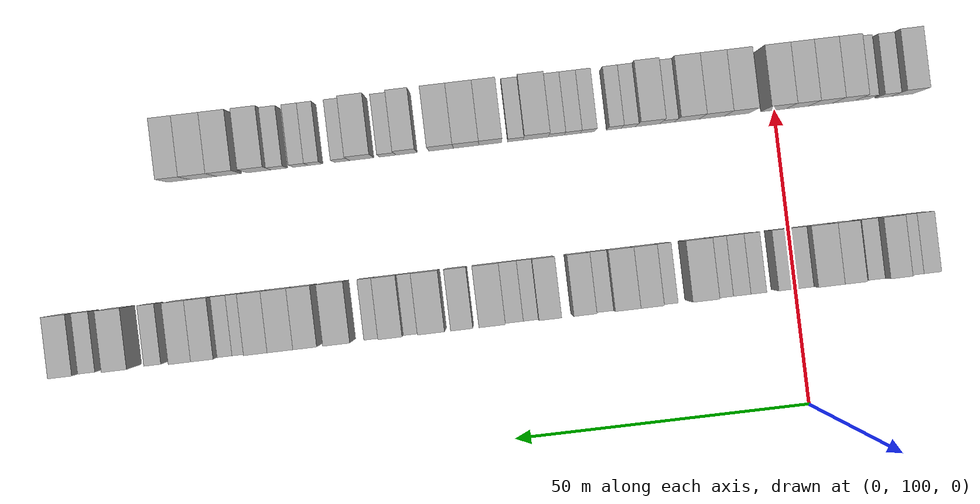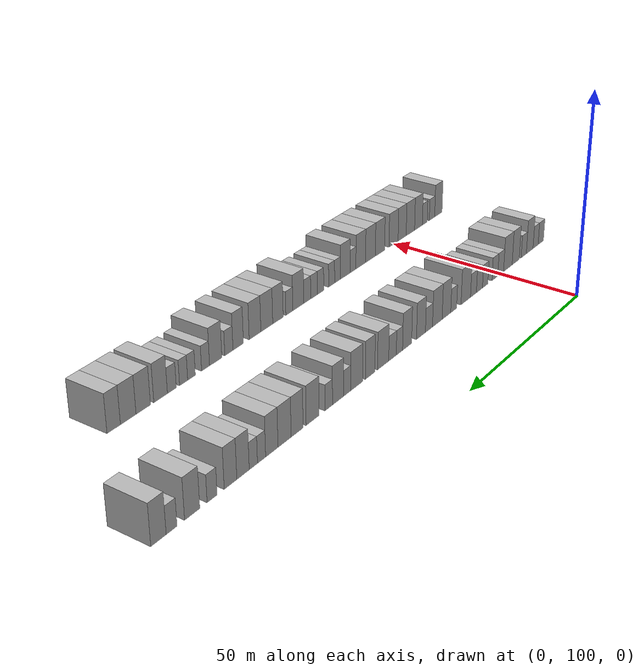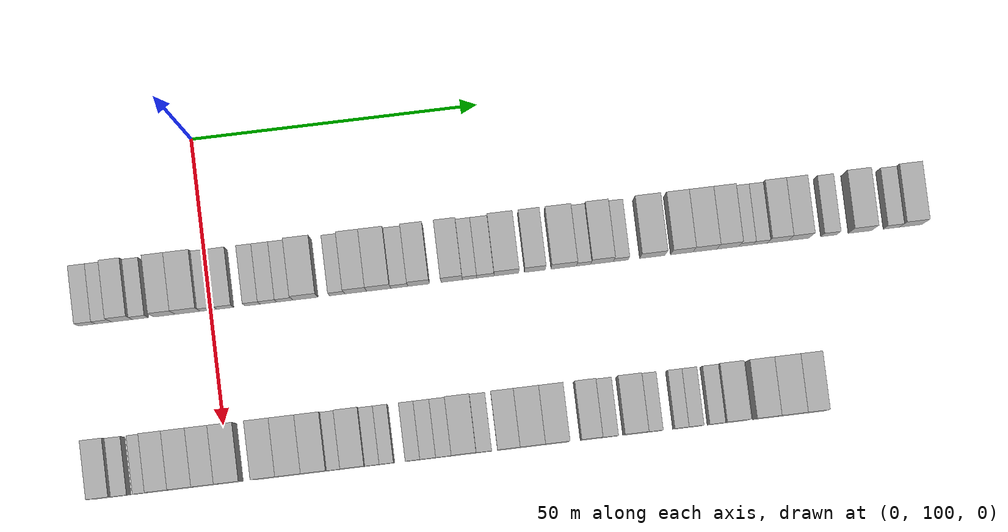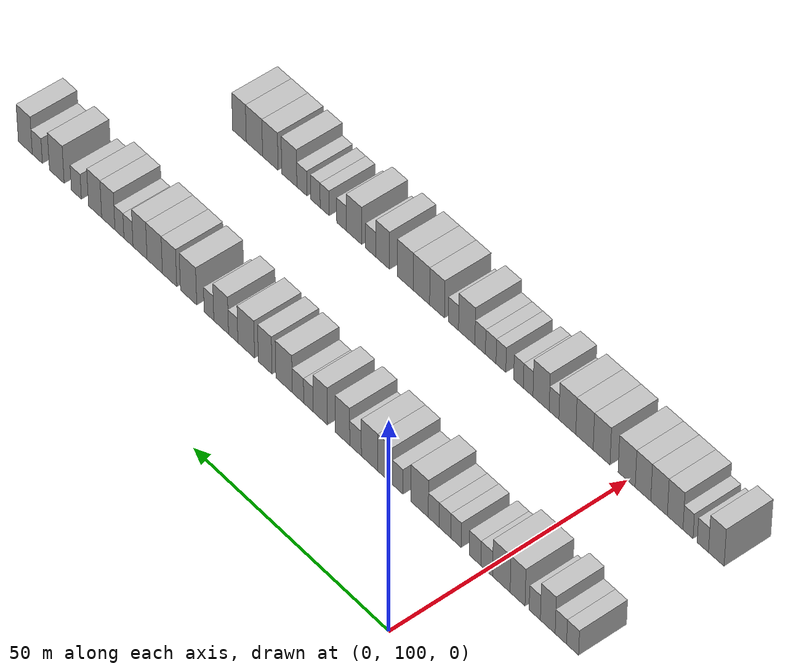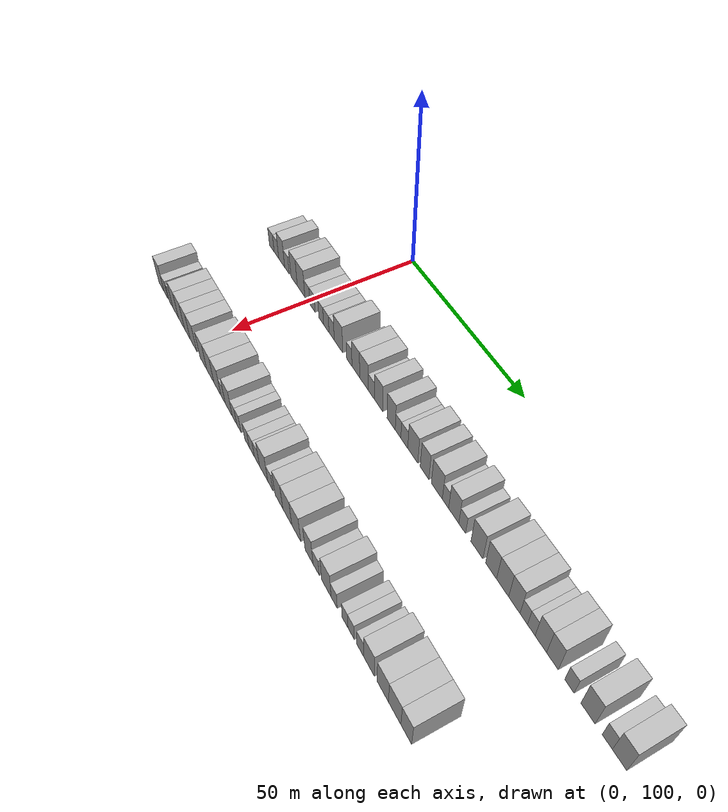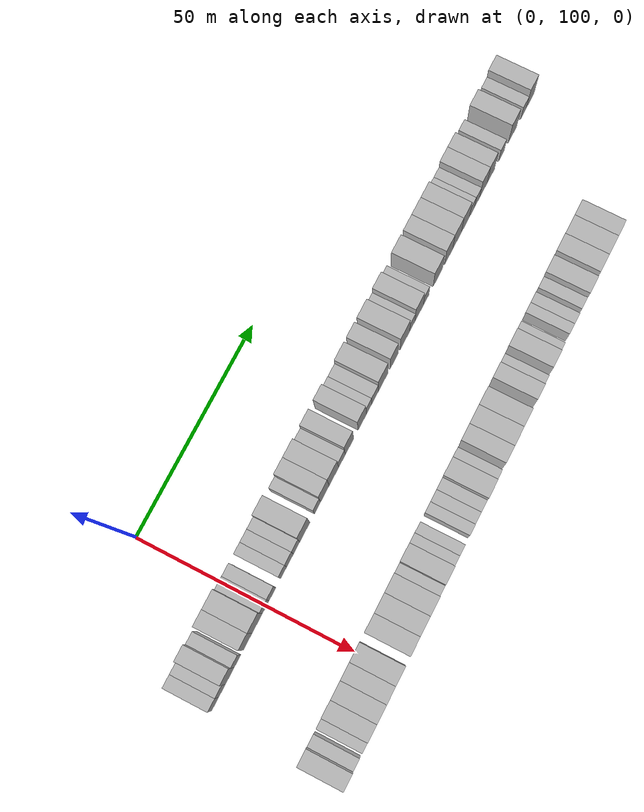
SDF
<sdf version="1.6">
 <world name="default">
  <model name="building_132">
   <static>1</static>
   <pose>25.0000 78.6470 0 0.000000 0.000000 0.000000</pose>
   <link name="link">
    <pose>0 0 3.00 0 0 0</pose>
    <collision name="collision"><geometry><box><size>10.0000 2.9197 6.0000</size></box></geometry></collision>
    <visual name="visual">
     <cast_shadows>0</cast_shadows>
     <geometry><box><size>10.0000 2.9197 6.0000</size></box></geometry>
     <material>
      <script>
       <uri>model://HANNAS_wall/materials/scripts</uri>
       <uri>model://HANNAS_wall/materials/textures</uri>
       <name>vrc/HANNAS_wall</name>
      </script>
     </material>
    </visual>
   </link>
  </model>
  <model name="building_133">
   <static>1</static>
   <pose>25.0000 81.5046 0 0.000000 0.000000 0.000000</pose>
   <link name="link">
    <pose>0 0 3.00 0 0 0</pose>
    <collision name="collision"><geometry><box><size>10.0000 2.7956 6.0000</size></box></geometry></collision>
    <visual name="visual">
     <cast_shadows>0</cast_shadows>
     <geometry><box><size>10.0000 2.7956 6.0000</size></box></geometry>
     <material>
      <script>
       <uri>model://HANNAS_wall/materials/scripts</uri>
       <uri>model://HANNAS_wall/materials/textures</uri>
       <name>vrc/HANNAS_wall</name>
      </script>
     </material>
    </visual>
   </link>
  </model>
  <model name="building_134">
   <static>1</static>
   <pose>25.0000 84.7092 0 0.000000 0.000000 0.000000</pose>
   <link name="link">
    <pose>0 0 4.50 0 0 0</pose>
    <collision name="collision"><geometry><box><size>10.0000 3.6135 9.0000</size></box></geometry></collision>
    <visual name="visual">
     <cast_shadows>0</cast_shadows>
     <geometry><box><size>10.0000 3.6135 9.0000</size></box></geometry>
     <material>
      <script>
       <uri>model://HANNAS_wall/materials/scripts</uri>
       <uri>model://HANNAS_wall/materials/textures</uri>
       <name>vrc/HANNAS_wall</name>
      </script>
     </material>
    </visual>
   </link>
  </model>
  <model name="building_135">
   <static>1</static>
   <pose>25.0000 87.8958 0 0.000000 0.000000 0.000000</pose>
   <link name="link">
    <pose>0 0 3.00 0 0 0</pose>
    <collision name="collision"><geometry><box><size>10.0000 2.7599 6.0000</size></box></geometry></collision>
    <visual name="visual">
     <cast_shadows>0</cast_shadows>
     <geometry><box><size>10.0000 2.7599 6.0000</size></box></geometry>
     <material>
      <script>
       <uri>model://HANNAS_wall/materials/scripts</uri>
       <uri>model://HANNAS_wall/materials/textures</uri>
       <name>vrc/HANNAS_wall</name>
      </script>
     </material>
    </visual>
   </link>
  </model>
  <model name="building_136">
   <static>1</static>
   <pose>25.0000 92.1163 0 0.000000 0.000000 0.000000</pose>
   <link name="link">
    <pose>0 0 4.50 0 0 0</pose>
    <collision name="collision"><geometry><box><size>10.0000 3.6810 9.0000</size></box></geometry></collision>
    <visual name="visual">
     <cast_shadows>0</cast_shadows>
     <geometry><box><size>10.0000 3.6810 9.0000</size></box></geometry>
     <material>
      <script>
       <uri>model://HANNAS_wall/materials/scripts</uri>
       <uri>model://HANNAS_wall/materials/textures</uri>
       <name>vrc/HANNAS_wall</name>
      </script>
     </material>
    </visual>
   </link>
  </model>
  <model name="building_137">
   <static>1</static>
   <pose>25.0000 96.1368 0 0.000000 0.000000 0.000000</pose>
   <link name="link">
    <pose>0 0 4.50 0 0 0</pose>
    <collision name="collision"><geometry><box><size>10.0000 4.3601 9.0000</size></box></geometry></collision>
    <visual name="visual">
     <cast_shadows>0</cast_shadows>
     <geometry><box><size>10.0000 4.3601 9.0000</size></box></geometry>
     <material>
      <script>
       <uri>model://HANNAS_wall/materials/scripts</uri>
       <uri>model://HANNAS_wall/materials/textures</uri>
       <name>vrc/HANNAS_wall</name>
      </script>
     </material>
    </visual>
   </link>
  </model>
  <model name="building_138">
   <static>1</static>
   <pose>25.0000 99.7640 0 0.000000 0.000000 0.000000</pose>
   <link name="link">
    <pose>0 0 3.00 0 0 0</pose>
    <collision name="collision"><geometry><box><size>10.0000 2.8944 6.0000</size></box></geometry></collision>
    <visual name="visual">
     <cast_shadows>0</cast_shadows>
     <geometry><box><size>10.0000 2.8944 6.0000</size></box></geometry>
     <material>
      <script>
       <uri>model://HANNAS_wall/materials/scripts</uri>
       <uri>model://HANNAS_wall/materials/textures</uri>
       <name>vrc/HANNAS_wall</name>
      </script>
     </material>
    </visual>
   </link>
  </model>
  <model name="building_139">
   <static>1</static>
   <pose>25.0000 102.6637 0 0.000000 0.000000 0.000000</pose>
   <link name="link">
    <pose>0 0 3.00 0 0 0</pose>
    <collision name="collision"><geometry><box><size>10.0000 2.9050 6.0000</size></box></geometry></collision>
    <visual name="visual">
     <cast_shadows>0</cast_shadows>
     <geometry><box><size>10.0000 2.9050 6.0000</size></box></geometry>
     <material>
      <script>
       <uri>model://HANNAS_wall/materials/scripts</uri>
       <uri>model://HANNAS_wall/materials/textures</uri>
       <name>vrc/HANNAS_wall</name>
      </script>
     </material>
    </visual>
   </link>
  </model>
  <model name="building_140">
   <static>1</static>
   <pose>25.0000 107.4209 0 0.000000 0.000000 0.000000</pose>
   <link name="link">
    <pose>0 0 3.00 0 0 0</pose>
    <collision name="collision"><geometry><box><size>10.0000 2.6094 6.0000</size></box></geometry></collision>
    <visual name="visual">
     <cast_shadows>0</cast_shadows>
     <geometry><box><size>10.0000 2.6094 6.0000</size></box></geometry>
     <material>
      <script>
       <uri>model://HANNAS_wall/materials/scripts</uri>
       <uri>model://HANNAS_wall/materials/textures</uri>
       <name>vrc/HANNAS_wall</name>
      </script>
     </material>
    </visual>
   </link>
  </model>
  <model name="building_141">
   <static>1</static>
   <pose>25.0000 110.1765 0 0.000000 0.000000 0.000000</pose>
   <link name="link">
    <pose>0 0 3.00 0 0 0</pose>
    <collision name="collision"><geometry><box><size>10.0000 2.9018 6.0000</size></box></geometry></collision>
    <visual name="visual">
     <cast_shadows>0</cast_shadows>
     <geometry><box><size>10.0000 2.9018 6.0000</size></box></geometry>
     <material>
      <script>
       <uri>model://HANNAS_wall/materials/scripts</uri>
       <uri>model://HANNAS_wall/materials/textures</uri>
       <name>vrc/HANNAS_wall</name>
      </script>
     </material>
    </visual>
   </link>
  </model>
  <model name="building_142">
   <static>1</static>
   <pose>25.0000 113.0110 0 0.000000 0.000000 0.000000</pose>
   <link name="link">
    <pose>0 0 3.00 0 0 0</pose>
    <collision name="collision"><geometry><box><size>10.0000 2.7672 6.0000</size></box></geometry></collision>
    <visual name="visual">
     <cast_shadows>0</cast_shadows>
     <geometry><box><size>10.0000 2.7672 6.0000</size></box></geometry>
     <material>
      <script>
       <uri>model://HANNAS_wall/materials/scripts</uri>
       <uri>model://HANNAS_wall/materials/textures</uri>
       <name>vrc/HANNAS_wall</name>
      </script>
     </material>
    </visual>
   </link>
  </model>
  <model name="building_143">
   <static>1</static>
   <pose>25.0000 116.5917 0 0.000000 0.000000 0.000000</pose>
   <link name="link">
    <pose>0 0 4.50 0 0 0</pose>
    <collision name="collision"><geometry><box><size>10.0000 4.3943 9.0000</size></box></geometry></collision>
    <visual name="visual">
     <cast_shadows>0</cast_shadows>
     <geometry><box><size>10.0000 4.3943 9.0000</size></box></geometry>
     <material>
      <script>
       <uri>model://HANNAS_wall/materials/scripts</uri>
       <uri>model://HANNAS_wall/materials/textures</uri>
       <name>vrc/HANNAS_wall</name>
      </script>
     </material>
    </visual>
   </link>
  </model>
  <model name="building_144">
   <static>1</static>
   <pose>25.0000 122.1174 0 0.000000 0.000000 0.000000</pose>
   <link name="link">
    <pose>0 0 3.00 0 0 0</pose>
    <collision name="collision"><geometry><box><size>10.0000 2.6570 6.0000</size></box></geometry></collision>
    <visual name="visual">
     <cast_shadows>0</cast_shadows>
     <geometry><box><size>10.0000 2.6570 6.0000</size></box></geometry>
     <material>
      <script>
       <uri>model://HANNAS_wall/materials/scripts</uri>
       <uri>model://HANNAS_wall/materials/textures</uri>
       <name>vrc/HANNAS_wall</name>
      </script>
     </material>
    </visual>
   </link>
  </model>
  <model name="building_145">
   <static>1</static>
   <pose>25.0000 125.3533 0 0.000000 0.000000 0.000000</pose>
   <link name="link">
    <pose>0 0 4.50 0 0 0</pose>
    <collision name="collision"><geometry><box><size>10.0000 3.8149 9.0000</size></box></geometry></collision>
    <visual name="visual">
     <cast_shadows>0</cast_shadows>
     <geometry><box><size>10.0000 3.8149 9.0000</size></box></geometry>
     <material>
      <script>
       <uri>model://HANNAS_wall/materials/scripts</uri>
       <uri>model://HANNAS_wall/materials/textures</uri>
       <name>vrc/HANNAS_wall</name>
      </script>
     </material>
    </visual>
   </link>
  </model>
  <model name="building_146">
   <static>1</static>
   <pose>25.0000 129.3549 0 0.000000 0.000000 0.000000</pose>
   <link name="link">
    <pose>0 0 4.50 0 0 0</pose>
    <collision name="collision"><geometry><box><size>10.0000 4.1883 9.0000</size></box></geometry></collision>
    <visual name="visual">
     <cast_shadows>0</cast_shadows>
     <geometry><box><size>10.0000 4.1883 9.0000</size></box></geometry>
     <material>
      <script>
       <uri>model://HANNAS_wall/materials/scripts</uri>
       <uri>model://HANNAS_wall/materials/textures</uri>
       <name>vrc/HANNAS_wall</name>
      </script>
     </material>
    </visual>
   </link>
  </model>
  <model name="building_147">
   <static>1</static>
   <pose>25.0000 132.9476 0 0.000000 0.000000 0.000000</pose>
   <link name="link">
    <pose>0 0 3.00 0 0 0</pose>
    <collision name="collision"><geometry><box><size>10.0000 2.9971 6.0000</size></box></geometry></collision>
    <visual name="visual">
     <cast_shadows>0</cast_shadows>
     <geometry><box><size>10.0000 2.9971 6.0000</size></box></geometry>
     <material>
      <script>
       <uri>model://HANNAS_wall/materials/scripts</uri>
       <uri>model://HANNAS_wall/materials/textures</uri>
       <name>vrc/HANNAS_wall</name>
      </script>
     </material>
    </visual>
   </link>
  </model>
  <model name="building_148">
   <static>1</static>
   <pose>25.0000 136.3239 0 0.000000 0.000000 0.000000</pose>
   <link name="link">
    <pose>0 0 4.50 0 0 0</pose>
    <collision name="collision"><geometry><box><size>10.0000 3.7555 9.0000</size></box></geometry></collision>
    <visual name="visual">
     <cast_shadows>0</cast_shadows>
     <geometry><box><size>10.0000 3.7555 9.0000</size></box></geometry>
     <material>
      <script>
       <uri>model://HANNAS_wall/materials/scripts</uri>
       <uri>model://HANNAS_wall/materials/textures</uri>
       <name>vrc/HANNAS_wall</name>
      </script>
     </material>
    </visual>
   </link>
  </model>
  <model name="building_149">
   <static>1</static>
   <pose>25.0000 142.0528 0 0.000000 0.000000 0.000000</pose>
   <link name="link">
    <pose>0 0 4.50 0 0 0</pose>
    <collision name="collision"><geometry><box><size>10.0000 3.7023 9.0000</size></box></geometry></collision>
    <visual name="visual">
     <cast_shadows>0</cast_shadows>
     <geometry><box><size>10.0000 3.7023 9.0000</size></box></geometry>
     <material>
      <script>
       <uri>model://HANNAS_wall/materials/scripts</uri>
       <uri>model://HANNAS_wall/materials/textures</uri>
       <name>vrc/HANNAS_wall</name>
      </script>
     </material>
    </visual>
   </link>
  </model>
  <model name="building_150">
   <static>1</static>
   <pose>25.0000 145.1534 0 0.000000 0.000000 0.000000</pose>
   <link name="link">
    <pose>0 0 3.00 0 0 0</pose>
    <collision name="collision"><geometry><box><size>10.0000 2.4989 6.0000</size></box></geometry></collision>
    <visual name="visual">
     <cast_shadows>0</cast_shadows>
     <geometry><box><size>10.0000 2.4989 6.0000</size></box></geometry>
     <material>
      <script>
       <uri>model://HANNAS_wall/materials/scripts</uri>
       <uri>model://HANNAS_wall/materials/textures</uri>
       <name>vrc/HANNAS_wall</name>
      </script>
     </material>
    </visual>
   </link>
  </model>
  <model name="building_151">
   <static>1</static>
   <pose>25.0000 147.8989 0 0.000000 0.000000 0.000000</pose>
   <link name="link">
    <pose>0 0 3.00 0 0 0</pose>
    <collision name="collision"><geometry><box><size>10.0000 2.9921 6.0000</size></box></geometry></collision>
    <visual name="visual">
     <cast_shadows>0</cast_shadows>
     <geometry><box><size>10.0000 2.9921 6.0000</size></box></geometry>
     <material>
      <script>
       <uri>model://HANNAS_wall/materials/scripts</uri>
       <uri>model://HANNAS_wall/materials/textures</uri>
       <name>vrc/HANNAS_wall</name>
      </script>
     </material>
    </visual>
   </link>
  </model>
  <model name="building_152">
   <static>1</static>
   <pose>25.0000 151.5547 0 0.000000 0.000000 0.000000</pose>
   <link name="link">
    <pose>0 0 4.50 0 0 0</pose>
    <collision name="collision"><geometry><box><size>10.0000 4.3194 9.0000</size></box></geometry></collision>
    <visual name="visual">
     <cast_shadows>0</cast_shadows>
     <geometry><box><size>10.0000 4.3194 9.0000</size></box></geometry>
     <material>
      <script>
       <uri>model://HANNAS_wall/materials/scripts</uri>
       <uri>model://HANNAS_wall/materials/textures</uri>
       <name>vrc/HANNAS_wall</name>
      </script>
     </material>
    </visual>
   </link>
  </model>
  <model name="building_153">
   <static>1</static>
   <pose>25.0000 156.5243 0 0.000000 0.000000 0.000000</pose>
   <link name="link">
    <pose>0 0 4.50 0 0 0</pose>
    <collision name="collision"><geometry><box><size>10.0000 3.6199 9.0000</size></box></geometry></collision>
    <visual name="visual">
     <cast_shadows>0</cast_shadows>
     <geometry><box><size>10.0000 3.6199 9.0000</size></box></geometry>
     <material>
      <script>
       <uri>model://HANNAS_wall/materials/scripts</uri>
       <uri>model://HANNAS_wall/materials/textures</uri>
       <name>vrc/HANNAS_wall</name>
      </script>
     </material>
    </visual>
   </link>
  </model>
  <model name="building_154">
   <static>1</static>
   <pose>25.0000 161.5489 0 0.000000 0.000000 0.000000</pose>
   <link name="link">
    <pose>0 0 4.50 0 0 0</pose>
    <collision name="collision"><geometry><box><size>10.0000 4.4294 9.0000</size></box></geometry></collision>
    <visual name="visual">
     <cast_shadows>0</cast_shadows>
     <geometry><box><size>10.0000 4.4294 9.0000</size></box></geometry>
     <material>
      <script>
       <uri>model://HANNAS_wall/materials/scripts</uri>
       <uri>model://HANNAS_wall/materials/textures</uri>
       <name>vrc/HANNAS_wall</name>
      </script>
     </material>
    </visual>
   </link>
  </model>
  <model name="building_155">
   <static>1</static>
   <pose>25.0000 165.0091 0 0.000000 0.000000 0.000000</pose>
   <link name="link">
    <pose>0 0 3.00 0 0 0</pose>
    <collision name="collision"><geometry><box><size>10.0000 2.4910 6.0000</size></box></geometry></collision>
    <visual name="visual">
     <cast_shadows>0</cast_shadows>
     <geometry><box><size>10.0000 2.4910 6.0000</size></box></geometry>
     <material>
      <script>
       <uri>model://HANNAS_wall/materials/scripts</uri>
       <uri>model://HANNAS_wall/materials/textures</uri>
       <name>vrc/HANNAS_wall</name>
      </script>
     </material>
    </visual>
   </link>
  </model>
  <model name="building_156">
   <static>1</static>
   <pose>25.0000 168.2266 0 0.000000 0.000000 0.000000</pose>
   <link name="link">
    <pose>0 0 4.50 0 0 0</pose>
    <collision name="collision"><geometry><box><size>10.0000 3.9438 9.0000</size></box></geometry></collision>
    <visual name="visual">
     <cast_shadows>0</cast_shadows>
     <geometry><box><size>10.0000 3.9438 9.0000</size></box></geometry>
     <material>
      <script>
       <uri>model://HANNAS_wall/materials/scripts</uri>
       <uri>model://HANNAS_wall/materials/textures</uri>
       <name>vrc/HANNAS_wall</name>
      </script>
     </material>
    </visual>
   </link>
  </model>
  <model name="building_157">
   <static>1</static>
   <pose>25.0000 171.4936 0 0.000000 0.000000 0.000000</pose>
   <link name="link">
    <pose>0 0 3.00 0 0 0</pose>
    <collision name="collision"><geometry><box><size>10.0000 2.5904 6.0000</size></box></geometry></collision>
    <visual name="visual">
     <cast_shadows>0</cast_shadows>
     <geometry><box><size>10.0000 2.5904 6.0000</size></box></geometry>
     <material>
      <script>
       <uri>model://HANNAS_wall/materials/scripts</uri>
       <uri>model://HANNAS_wall/materials/textures</uri>
       <name>vrc/HANNAS_wall</name>
      </script>
     </material>
    </visual>
   </link>
  </model>
  <model name="building_158">
   <static>1</static>
   <pose>25.0000 176.9845 0 0.000000 0.000000 0.000000</pose>
   <link name="link">
    <pose>0 0 4.50 0 0 0</pose>
    <collision name="collision"><geometry><box><size>10.0000 4.3913 9.0000</size></box></geometry></collision>
    <visual name="visual">
     <cast_shadows>0</cast_shadows>
     <geometry><box><size>10.0000 4.3913 9.0000</size></box></geometry>
     <material>
      <script>
       <uri>model://HANNAS_wall/materials/scripts</uri>
       <uri>model://HANNAS_wall/materials/textures</uri>
       <name>vrc/HANNAS_wall</name>
      </script>
     </material>
    </visual>
   </link>
  </model>
  <model name="building_159">
   <static>1</static>
   <pose>25.0000 182.1224 0 0.000000 0.000000 0.000000</pose>
   <link name="link">
    <pose>0 0 4.50 0 0 0</pose>
    <collision name="collision"><geometry><box><size>10.0000 3.8846 9.0000</size></box></geometry></collision>
    <visual name="visual">
     <cast_shadows>0</cast_shadows>
     <geometry><box><size>10.0000 3.8846 9.0000</size></box></geometry>
     <material>
      <script>
       <uri>model://HANNAS_wall/materials/scripts</uri>
       <uri>model://HANNAS_wall/materials/textures</uri>
       <name>vrc/HANNAS_wall</name>
      </script>
     </material>
    </visual>
   </link>
  </model>
  <model name="building_160">
   <static>1</static>
   <pose>25.0000 186.1620 0 0.000000 0.000000 0.000000</pose>
   <link name="link">
    <pose>0 0 4.50 0 0 0</pose>
    <collision name="collision"><geometry><box><size>10.0000 4.1945 9.0000</size></box></geometry></collision>
    <visual name="visual">
     <cast_shadows>0</cast_shadows>
     <geometry><box><size>10.0000 4.1945 9.0000</size></box></geometry>
     <material>
      <script>
       <uri>model://HANNAS_wall/materials/scripts</uri>
       <uri>model://HANNAS_wall/materials/textures</uri>
       <name>vrc/HANNAS_wall</name>
      </script>
     </material>
    </visual>
   </link>
  </model>
  <model name="building_161">
   <static>1</static>
   <pose>25.0000 190.1838 0 0.000000 0.000000 0.000000</pose>
   <link name="link">
    <pose>0 0 4.50 0 0 0</pose>
    <collision name="collision"><geometry><box><size>10.0000 3.8492 9.0000</size></box></geometry></collision>
    <visual name="visual">
     <cast_shadows>0</cast_shadows>
     <geometry><box><size>10.0000 3.8492 9.0000</size></box></geometry>
     <material>
      <script>
       <uri>model://HANNAS_wall/materials/scripts</uri>
       <uri>model://HANNAS_wall/materials/textures</uri>
       <name>vrc/HANNAS_wall</name>
      </script>
     </material>
    </visual>
   </link>
  </model>
  <model name="building_162">
   <static>1</static>
   <pose>25.0000 193.3548 0 0.000000 0.000000 0.000000</pose>
   <link name="link">
    <pose>0 0 3.00 0 0 0</pose>
    <collision name="collision"><geometry><box><size>10.0000 2.4927 6.0000</size></box></geometry></collision>
    <visual name="visual">
     <cast_shadows>0</cast_shadows>
     <geometry><box><size>10.0000 2.4927 6.0000</size></box></geometry>
     <material>
      <script>
       <uri>model://HANNAS_wall/materials/scripts</uri>
       <uri>model://HANNAS_wall/materials/textures</uri>
       <name>vrc/HANNAS_wall</name>
      </script>
     </material>
    </visual>
   </link>
  </model>
  <model name="building_163">
   <static>1</static>
   <pose>25.0000 195.8367 0 0.000000 0.000000 0.000000</pose>
   <link name="link">
    <pose>0 0 3.00 0 0 0</pose>
    <collision name="collision"><geometry><box><size>10.0000 2.4711 6.0000</size></box></geometry></collision>
    <visual name="visual">
     <cast_shadows>0</cast_shadows>
     <geometry><box><size>10.0000 2.4711 6.0000</size></box></geometry>
     <material>
      <script>
       <uri>model://HANNAS_wall/materials/scripts</uri>
       <uri>model://HANNAS_wall/materials/textures</uri>
       <name>vrc/HANNAS_wall</name>
      </script>
     </material>
    </visual>
   </link>
  </model>
  <model name="building_164">
   <static>1</static>
   <pose>25.0000 198.9050 0 0.000000 0.000000 0.000000</pose>
   <link name="link">
    <pose>0 0 4.50 0 0 0</pose>
    <collision name="collision"><geometry><box><size>10.0000 3.6655 9.0000</size></box></geometry></collision>
    <visual name="visual">
     <cast_shadows>0</cast_shadows>
     <geometry><box><size>10.0000 3.6655 9.0000</size></box></geometry>
     <material>
      <script>
       <uri>model://HANNAS_wall/materials/scripts</uri>
       <uri>model://HANNAS_wall/materials/textures</uri>
       <name>vrc/HANNAS_wall</name>
      </script>
     </material>
    </visual>
   </link>
  </model>
  <model name="building_165">
   <static>1</static>
   <pose>25.0000 202.5617 0 0.000000 0.000000 0.000000</pose>
   <link name="link">
    <pose>0 0 4.50 0 0 0</pose>
    <collision name="collision"><geometry><box><size>10.0000 3.6479 9.0000</size></box></geometry></collision>
    <visual name="visual">
     <cast_shadows>0</cast_shadows>
     <geometry><box><size>10.0000 3.6479 9.0000</size></box></geometry>
     <material>
      <script>
       <uri>model://HANNAS_wall/materials/scripts</uri>
       <uri>model://HANNAS_wall/materials/textures</uri>
       <name>vrc/HANNAS_wall</name>
      </script>
     </material>
    </visual>
   </link>
  </model>
  <model name="building_166">
   <static>1</static>
   <pose>25.0000 207.7889 0 0.000000 0.000000 0.000000</pose>
   <link name="link">
    <pose>0 0 3.00 0 0 0</pose>
    <collision name="collision"><geometry><box><size>10.0000 2.8065 6.0000</size></box></geometry></collision>
    <visual name="visual">
     <cast_shadows>0</cast_shadows>
     <geometry><box><size>10.0000 2.8065 6.0000</size></box></geometry>
     <material>
      <script>
       <uri>model://HANNAS_wall/materials/scripts</uri>
       <uri>model://HANNAS_wall/materials/textures</uri>
       <name>vrc/HANNAS_wall</name>
      </script>
     </material>
    </visual>
   </link>
  </model>
  <model name="building_167">
   <static>1</static>
   <pose>25.0000 213.2486 0 0.000000 0.000000 0.000000</pose>
   <link name="link">
    <pose>0 0 4.50 0 0 0</pose>
    <collision name="collision"><geometry><box><size>10.0000 4.1130 9.0000</size></box></geometry></collision>
    <visual name="visual">
     <cast_shadows>0</cast_shadows>
     <geometry><box><size>10.0000 4.1130 9.0000</size></box></geometry>
     <material>
      <script>
       <uri>model://HANNAS_wall/materials/scripts</uri>
       <uri>model://HANNAS_wall/materials/textures</uri>
       <name>vrc/HANNAS_wall</name>
      </script>
     </material>
    </visual>
   </link>
  </model>
  <model name="building_168">
   <static>1</static>
   <pose>25.0000 218.7199 0 0.000000 0.000000 0.000000</pose>
   <link name="link">
    <pose>0 0 3.00 0 0 0</pose>
    <collision name="collision"><geometry><box><size>10.0000 2.8295 6.0000</size></box></geometry></collision>
    <visual name="visual">
     <cast_shadows>0</cast_shadows>
     <geometry><box><size>10.0000 2.8295 6.0000</size></box></geometry>
     <material>
      <script>
       <uri>model://HANNAS_wall/materials/scripts</uri>
       <uri>model://HANNAS_wall/materials/textures</uri>
       <name>vrc/HANNAS_wall</name>
      </script>
     </material>
    </visual>
   </link>
  </model>
  <model name="building_169">
   <static>1</static>
   <pose>25.0000 222.1016 0 0.000000 0.000000 0.000000</pose>
   <link name="link">
    <pose>0 0 4.50 0 0 0</pose>
    <collision name="collision"><geometry><box><size>10.0000 3.9340 9.0000</size></box></geometry></collision>
    <visual name="visual">
     <cast_shadows>0</cast_shadows>
     <geometry><box><size>10.0000 3.9340 9.0000</size></box></geometry>
     <material>
      <script>
       <uri>model://HANNAS_wall/materials/scripts</uri>
       <uri>model://HANNAS_wall/materials/textures</uri>
       <name>vrc/HANNAS_wall</name>
      </script>
     </material>
    </visual>
   </link>
  </model>
  <model name="building_359">
   <static>1</static>
   <pose>55.0000 78.3261 0 0.000000 0.000000 0.000000</pose>
   <link name="link">
    <pose>0 0 4.50 0 0 0</pose>
    <collision name="collision"><geometry><box><size>10.0000 3.7846 9.0000</size></box></geometry></collision>
    <visual name="visual">
     <cast_shadows>0</cast_shadows>
     <geometry><box><size>10.0000 3.7846 9.0000</size></box></geometry>
     <material>
      <script>
       <uri>model://HANNAS_wall/materials/scripts</uri>
       <uri>model://HANNAS_wall/materials/textures</uri>
       <name>vrc/HANNAS_wall</name>
      </script>
     </material>
    </visual>
   </link>
  </model>
  <model name="building_360">
   <static>1</static>
   <pose>55.0000 81.5836 0 0.000000 0.000000 0.000000</pose>
   <link name="link">
    <pose>0 0 3.00 0 0 0</pose>
    <collision name="collision"><geometry><box><size>10.0000 2.7304 6.0000</size></box></geometry></collision>
    <visual name="visual">
     <cast_shadows>0</cast_shadows>
     <geometry><box><size>10.0000 2.7304 6.0000</size></box></geometry>
     <material>
      <script>
       <uri>model://HANNAS_wall/materials/scripts</uri>
       <uri>model://HANNAS_wall/materials/textures</uri>
       <name>vrc/HANNAS_wall</name>
      </script>
     </material>
    </visual>
   </link>
  </model>
  <model name="building_361">
   <static>1</static>
   <pose>55.0000 85.1743 0 0.000000 0.000000 0.000000</pose>
   <link name="link">
    <pose>0 0 3.00 0 0 0</pose>
    <collision name="collision"><geometry><box><size>10.0000 2.4512 6.0000</size></box></geometry></collision>
    <visual name="visual">
     <cast_shadows>0</cast_shadows>
     <geometry><box><size>10.0000 2.4512 6.0000</size></box></geometry>
     <material>
      <script>
       <uri>model://HANNAS_wall/materials/scripts</uri>
       <uri>model://HANNAS_wall/materials/textures</uri>
       <name>vrc/HANNAS_wall</name>
      </script>
     </material>
    </visual>
   </link>
  </model>
  <model name="building_362">
   <static>1</static>
   <pose>55.0000 88.3098 0 0.000000 0.000000 0.000000</pose>
   <link name="link">
    <pose>0 0 4.50 0 0 0</pose>
    <collision name="collision"><geometry><box><size>10.0000 3.8197 9.0000</size></box></geometry></collision>
    <visual name="visual">
     <cast_shadows>0</cast_shadows>
     <geometry><box><size>10.0000 3.8197 9.0000</size></box></geometry>
     <material>
      <script>
       <uri>model://HANNAS_wall/materials/scripts</uri>
       <uri>model://HANNAS_wall/materials/textures</uri>
       <name>vrc/HANNAS_wall</name>
      </script>
     </material>
    </visual>
   </link>
  </model>
  <model name="building_363">
   <static>1</static>
   <pose>55.0000 92.2527 0 0.000000 0.000000 0.000000</pose>
   <link name="link">
    <pose>0 0 4.50 0 0 0</pose>
    <collision name="collision"><geometry><box><size>10.0000 4.0663 9.0000</size></box></geometry></collision>
    <visual name="visual">
     <cast_shadows>0</cast_shadows>
     <geometry><box><size>10.0000 4.0663 9.0000</size></box></geometry>
     <material>
      <script>
       <uri>model://HANNAS_wall/materials/scripts</uri>
       <uri>model://HANNAS_wall/materials/textures</uri>
       <name>vrc/HANNAS_wall</name>
      </script>
     </material>
    </visual>
   </link>
  </model>
  <model name="building_364">
   <static>1</static>
   <pose>55.0000 96.2011 0 0.000000 0.000000 0.000000</pose>
   <link name="link">
    <pose>0 0 4.50 0 0 0</pose>
    <collision name="collision"><geometry><box><size>10.0000 3.8303 9.0000</size></box></geometry></collision>
    <visual name="visual">
     <cast_shadows>0</cast_shadows>
     <geometry><box><size>10.0000 3.8303 9.0000</size></box></geometry>
     <material>
      <script>
       <uri>model://HANNAS_wall/materials/scripts</uri>
       <uri>model://HANNAS_wall/materials/textures</uri>
       <name>vrc/HANNAS_wall</name>
      </script>
     </material>
    </visual>
   </link>
  </model>
  <model name="building_365">
   <static>1</static>
   <pose>55.0000 100.2304 0 0.000000 0.000000 0.000000</pose>
   <link name="link">
    <pose>0 0 4.50 0 0 0</pose>
    <collision name="collision"><geometry><box><size>10.0000 4.2283 9.0000</size></box></geometry></collision>
    <visual name="visual">
     <cast_shadows>0</cast_shadows>
     <geometry><box><size>10.0000 4.2283 9.0000</size></box></geometry>
     <material>
      <script>
       <uri>model://HANNAS_wall/materials/scripts</uri>
       <uri>model://HANNAS_wall/materials/textures</uri>
       <name>vrc/HANNAS_wall</name>
      </script>
     </material>
    </visual>
   </link>
  </model>
  <model name="building_366">
   <static>1</static>
   <pose>55.0000 106.4414 0 0.000000 0.000000 0.000000</pose>
   <link name="link">
    <pose>0 0 4.50 0 0 0</pose>
    <collision name="collision"><geometry><box><size>10.0000 4.1938 9.0000</size></box></geometry></collision>
    <visual name="visual">
     <cast_shadows>0</cast_shadows>
     <geometry><box><size>10.0000 4.1938 9.0000</size></box></geometry>
     <material>
      <script>
       <uri>model://HANNAS_wall/materials/scripts</uri>
       <uri>model://HANNAS_wall/materials/textures</uri>
       <name>vrc/HANNAS_wall</name>
      </script>
     </material>
    </visual>
   </link>
  </model>
  <model name="building_367">
   <static>1</static>
   <pose>55.0000 110.7155 0 0.000000 0.000000 0.000000</pose>
   <link name="link">
    <pose>0 0 4.50 0 0 0</pose>
    <collision name="collision"><geometry><box><size>10.0000 4.3543 9.0000</size></box></geometry></collision>
    <visual name="visual">
     <cast_shadows>0</cast_shadows>
     <geometry><box><size>10.0000 4.3543 9.0000</size></box></geometry>
     <material>
      <script>
       <uri>model://HANNAS_wall/materials/scripts</uri>
       <uri>model://HANNAS_wall/materials/textures</uri>
       <name>vrc/HANNAS_wall</name>
      </script>
     </material>
    </visual>
   </link>
  </model>
  <model name="building_368">
   <static>1</static>
   <pose>55.0000 115.0120 0 0.000000 0.000000 0.000000</pose>
   <link name="link">
    <pose>0 0 4.50 0 0 0</pose>
    <collision name="collision"><geometry><box><size>10.0000 4.2387 9.0000</size></box></geometry></collision>
    <visual name="visual">
     <cast_shadows>0</cast_shadows>
     <geometry><box><size>10.0000 4.2387 9.0000</size></box></geometry>
     <material>
      <script>
       <uri>model://HANNAS_wall/materials/scripts</uri>
       <uri>model://HANNAS_wall/materials/textures</uri>
       <name>vrc/HANNAS_wall</name>
      </script>
     </material>
    </visual>
   </link>
  </model>
  <model name="building_369">
   <static>1</static>
   <pose>55.0000 118.3567 0 0.000000 0.000000 0.000000</pose>
   <link name="link">
    <pose>0 0 3.00 0 0 0</pose>
    <collision name="collision"><geometry><box><size>10.0000 2.4506 6.0000</size></box></geometry></collision>
    <visual name="visual">
     <cast_shadows>0</cast_shadows>
     <geometry><box><size>10.0000 2.4506 6.0000</size></box></geometry>
     <material>
      <script>
       <uri>model://HANNAS_wall/materials/scripts</uri>
       <uri>model://HANNAS_wall/materials/textures</uri>
       <name>vrc/HANNAS_wall</name>
      </script>
     </material>
    </visual>
   </link>
  </model>
  <model name="building_370">
   <static>1</static>
   <pose>55.0000 121.6298 0 0.000000 0.000000 0.000000</pose>
   <link name="link">
    <pose>0 0 4.50 0 0 0</pose>
    <collision name="collision"><geometry><box><size>10.0000 4.0957 9.0000</size></box></geometry></collision>
    <visual name="visual">
     <cast_shadows>0</cast_shadows>
     <geometry><box><size>10.0000 4.0957 9.0000</size></box></geometry>
     <material>
      <script>
       <uri>model://HANNAS_wall/materials/scripts</uri>
       <uri>model://HANNAS_wall/materials/textures</uri>
       <name>vrc/HANNAS_wall</name>
      </script>
     </material>
    </visual>
   </link>
  </model>
  <model name="building_371">
   <static>1</static>
   <pose>55.0000 124.9020 0 0.000000 0.000000 0.000000</pose>
   <link name="link">
    <pose>0 0 3.00 0 0 0</pose>
    <collision name="collision"><geometry><box><size>10.0000 2.4487 6.0000</size></box></geometry></collision>
    <visual name="visual">
     <cast_shadows>0</cast_shadows>
     <geometry><box><size>10.0000 2.4487 6.0000</size></box></geometry>
     <material>
      <script>
       <uri>model://HANNAS_wall/materials/scripts</uri>
       <uri>model://HANNAS_wall/materials/textures</uri>
       <name>vrc/HANNAS_wall</name>
      </script>
     </material>
    </visual>
   </link>
  </model>
  <model name="building_372">
   <static>1</static>
   <pose>55.0000 127.3558 0 0.000000 0.000000 0.000000</pose>
   <link name="link">
    <pose>0 0 3.00 0 0 0</pose>
    <collision name="collision"><geometry><box><size>10.0000 2.4588 6.0000</size></box></geometry></collision>
    <visual name="visual">
     <cast_shadows>0</cast_shadows>
     <geometry><box><size>10.0000 2.4588 6.0000</size></box></geometry>
     <material>
      <script>
       <uri>model://HANNAS_wall/materials/scripts</uri>
       <uri>model://HANNAS_wall/materials/textures</uri>
       <name>vrc/HANNAS_wall</name>
      </script>
     </material>
    </visual>
   </link>
  </model>
  <model name="building_373">
   <static>1</static>
   <pose>55.0000 131.8368 0 0.000000 0.000000 0.000000</pose>
   <link name="link">
    <pose>0 0 3.00 0 0 0</pose>
    <collision name="collision"><geometry><box><size>10.0000 2.5033 6.0000</size></box></geometry></collision>
    <visual name="visual">
     <cast_shadows>0</cast_shadows>
     <geometry><box><size>10.0000 2.5033 6.0000</size></box></geometry>
     <material>
      <script>
       <uri>model://HANNAS_wall/materials/scripts</uri>
       <uri>model://HANNAS_wall/materials/textures</uri>
       <name>vrc/HANNAS_wall</name>
      </script>
     </material>
    </visual>
   </link>
  </model>
  <model name="building_374">
   <static>1</static>
   <pose>55.0000 134.4457 0 0.000000 0.000000 0.000000</pose>
   <link name="link">
    <pose>0 0 3.00 0 0 0</pose>
    <collision name="collision"><geometry><box><size>10.0000 2.7145 6.0000</size></box></geometry></collision>
    <visual name="visual">
     <cast_shadows>0</cast_shadows>
     <geometry><box><size>10.0000 2.7145 6.0000</size></box></geometry>
     <material>
      <script>
       <uri>model://HANNAS_wall/materials/scripts</uri>
       <uri>model://HANNAS_wall/materials/textures</uri>
       <name>vrc/HANNAS_wall</name>
      </script>
     </material>
    </visual>
   </link>
  </model>
  <model name="building_375">
   <static>1</static>
   <pose>55.0000 137.1591 0 0.000000 0.000000 0.000000</pose>
   <link name="link">
    <pose>0 0 3.00 0 0 0</pose>
    <collision name="collision"><geometry><box><size>10.0000 2.7121 6.0000</size></box></geometry></collision>
    <visual name="visual">
     <cast_shadows>0</cast_shadows>
     <geometry><box><size>10.0000 2.7121 6.0000</size></box></geometry>
     <material>
      <script>
       <uri>model://HANNAS_wall/materials/scripts</uri>
       <uri>model://HANNAS_wall/materials/textures</uri>
       <name>vrc/HANNAS_wall</name>
      </script>
     </material>
    </visual>
   </link>
  </model>
  <model name="building_376">
   <static>1</static>
   <pose>55.0000 140.6300 0 0.000000 0.000000 0.000000</pose>
   <link name="link">
    <pose>0 0 4.50 0 0 0</pose>
    <collision name="collision"><geometry><box><size>10.0000 4.2297 9.0000</size></box></geometry></collision>
    <visual name="visual">
     <cast_shadows>0</cast_shadows>
     <geometry><box><size>10.0000 4.2297 9.0000</size></box></geometry>
     <material>
      <script>
       <uri>model://HANNAS_wall/materials/scripts</uri>
       <uri>model://HANNAS_wall/materials/textures</uri>
       <name>vrc/HANNAS_wall</name>
      </script>
     </material>
    </visual>
   </link>
  </model>
  <model name="building_377">
   <static>1</static>
   <pose>55.0000 144.0697 0 0.000000 0.000000 0.000000</pose>
   <link name="link">
    <pose>0 0 3.00 0 0 0</pose>
    <collision name="collision"><geometry><box><size>10.0000 2.6498 6.0000</size></box></geometry></collision>
    <visual name="visual">
     <cast_shadows>0</cast_shadows>
     <geometry><box><size>10.0000 2.6498 6.0000</size></box></geometry>
     <material>
      <script>
       <uri>model://HANNAS_wall/materials/scripts</uri>
       <uri>model://HANNAS_wall/materials/textures</uri>
       <name>vrc/HANNAS_wall</name>
      </script>
     </material>
    </visual>
   </link>
  </model>
  <model name="building_378">
   <static>1</static>
   <pose>55.0000 148.3265 0 0.000000 0.000000 0.000000</pose>
   <link name="link">
    <pose>0 0 4.50 0 0 0</pose>
    <collision name="collision"><geometry><box><size>10.0000 3.8637 9.0000</size></box></geometry></collision>
    <visual name="visual">
     <cast_shadows>0</cast_shadows>
     <geometry><box><size>10.0000 3.8637 9.0000</size></box></geometry>
     <material>
      <script>
       <uri>model://HANNAS_wall/materials/scripts</uri>
       <uri>model://HANNAS_wall/materials/textures</uri>
       <name>vrc/HANNAS_wall</name>
      </script>
     </material>
    </visual>
   </link>
  </model>
  <model name="building_379">
   <static>1</static>
   <pose>55.0000 152.4165 0 0.000000 0.000000 0.000000</pose>
   <link name="link">
    <pose>0 0 4.50 0 0 0</pose>
    <collision name="collision"><geometry><box><size>10.0000 4.3164 9.0000</size></box></geometry></collision>
    <visual name="visual">
     <cast_shadows>0</cast_shadows>
     <geometry><box><size>10.0000 4.3164 9.0000</size></box></geometry>
     <material>
      <script>
       <uri>model://HANNAS_wall/materials/scripts</uri>
       <uri>model://HANNAS_wall/materials/textures</uri>
       <name>vrc/HANNAS_wall</name>
      </script>
     </material>
    </visual>
   </link>
  </model>
  <model name="building_380">
   <static>1</static>
   <pose>55.0000 156.6598 0 0.000000 0.000000 0.000000</pose>
   <link name="link">
    <pose>0 0 4.50 0 0 0</pose>
    <collision name="collision"><geometry><box><size>10.0000 4.1703 9.0000</size></box></geometry></collision>
    <visual name="visual">
     <cast_shadows>0</cast_shadows>
     <geometry><box><size>10.0000 4.1703 9.0000</size></box></geometry>
     <material>
      <script>
       <uri>model://HANNAS_wall/materials/scripts</uri>
       <uri>model://HANNAS_wall/materials/textures</uri>
       <name>vrc/HANNAS_wall</name>
      </script>
     </material>
    </visual>
   </link>
  </model>
  <model name="building_381">
   <static>1</static>
   <pose>55.0000 162.5505 0 0.000000 0.000000 0.000000</pose>
   <link name="link">
    <pose>0 0 4.50 0 0 0</pose>
    <collision name="collision"><geometry><box><size>10.0000 3.6109 9.0000</size></box></geometry></collision>
    <visual name="visual">
     <cast_shadows>0</cast_shadows>
     <geometry><box><size>10.0000 3.6109 9.0000</size></box></geometry>
     <material>
      <script>
       <uri>model://HANNAS_wall/materials/scripts</uri>
       <uri>model://HANNAS_wall/materials/textures</uri>
       <name>vrc/HANNAS_wall</name>
      </script>
     </material>
    </visual>
   </link>
  </model>
  <model name="building_382">
   <static>1</static>
   <pose>55.0000 165.7409 0 0.000000 0.000000 0.000000</pose>
   <link name="link">
    <pose>0 0 3.00 0 0 0</pose>
    <collision name="collision"><geometry><box><size>10.0000 2.7699 6.0000</size></box></geometry></collision>
    <visual name="visual">
     <cast_shadows>0</cast_shadows>
     <geometry><box><size>10.0000 2.7699 6.0000</size></box></geometry>
     <material>
      <script>
       <uri>model://HANNAS_wall/materials/scripts</uri>
       <uri>model://HANNAS_wall/materials/textures</uri>
       <name>vrc/HANNAS_wall</name>
      </script>
     </material>
    </visual>
   </link>
  </model>
  <model name="building_383">
   <static>1</static>
   <pose>55.0000 170.1615 0 0.000000 0.000000 0.000000</pose>
   <link name="link">
    <pose>0 0 4.50 0 0 0</pose>
    <collision name="collision"><geometry><box><size>10.0000 4.0714 9.0000</size></box></geometry></collision>
    <visual name="visual">
     <cast_shadows>0</cast_shadows>
     <geometry><box><size>10.0000 4.0714 9.0000</size></box></geometry>
     <material>
      <script>
       <uri>model://HANNAS_wall/materials/scripts</uri>
       <uri>model://HANNAS_wall/materials/textures</uri>
       <name>vrc/HANNAS_wall</name>
      </script>
     </material>
    </visual>
   </link>
  </model>
  <model name="building_384">
   <static>1</static>
   <pose>55.0000 173.4957 0 0.000000 0.000000 0.000000</pose>
   <link name="link">
    <pose>0 0 3.00 0 0 0</pose>
    <collision name="collision"><geometry><box><size>10.0000 2.5970 6.0000</size></box></geometry></collision>
    <visual name="visual">
     <cast_shadows>0</cast_shadows>
     <geometry><box><size>10.0000 2.5970 6.0000</size></box></geometry>
     <material>
      <script>
       <uri>model://HANNAS_wall/materials/scripts</uri>
       <uri>model://HANNAS_wall/materials/textures</uri>
       <name>vrc/HANNAS_wall</name>
      </script>
     </material>
    </visual>
   </link>
  </model>
  <model name="building_385">
   <static>1</static>
   <pose>55.0000 178.0134 0 0.000000 0.000000 0.000000</pose>
   <link name="link">
    <pose>0 0 3.00 0 0 0</pose>
    <collision name="collision"><geometry><box><size>10.0000 2.4384 6.0000</size></box></geometry></collision>
    <visual name="visual">
     <cast_shadows>0</cast_shadows>
     <geometry><box><size>10.0000 2.4384 6.0000</size></box></geometry>
     <material>
      <script>
       <uri>model://HANNAS_wall/materials/scripts</uri>
       <uri>model://HANNAS_wall/materials/textures</uri>
       <name>vrc/HANNAS_wall</name>
      </script>
     </material>
    </visual>
   </link>
  </model>
  <model name="building_386">
   <static>1</static>
   <pose>55.0000 180.5093 0 0.000000 0.000000 0.000000</pose>
   <link name="link">
    <pose>0 0 3.00 0 0 0</pose>
    <collision name="collision"><geometry><box><size>10.0000 2.5535 6.0000</size></box></geometry></collision>
    <visual name="visual">
     <cast_shadows>0</cast_shadows>
     <geometry><box><size>10.0000 2.5535 6.0000</size></box></geometry>
     <material>
      <script>
       <uri>model://HANNAS_wall/materials/scripts</uri>
       <uri>model://HANNAS_wall/materials/textures</uri>
       <name>vrc/HANNAS_wall</name>
      </script>
     </material>
    </visual>
   </link>
  </model>
  <model name="building_387">
   <static>1</static>
   <pose>55.0000 184.1531 0 0.000000 0.000000 0.000000</pose>
   <link name="link">
    <pose>0 0 3.00 0 0 0</pose>
    <collision name="collision"><geometry><box><size>10.0000 2.7340 6.0000</size></box></geometry></collision>
    <visual name="visual">
     <cast_shadows>0</cast_shadows>
     <geometry><box><size>10.0000 2.7340 6.0000</size></box></geometry>
     <material>
      <script>
       <uri>model://HANNAS_wall/materials/scripts</uri>
       <uri>model://HANNAS_wall/materials/textures</uri>
       <name>vrc/HANNAS_wall</name>
      </script>
     </material>
    </visual>
   </link>
  </model>
  <model name="building_388">
   <static>1</static>
   <pose>55.0000 187.5712 0 0.000000 0.000000 0.000000</pose>
   <link name="link">
    <pose>0 0 4.50 0 0 0</pose>
    <collision name="collision"><geometry><box><size>10.0000 4.1023 9.0000</size></box></geometry></collision>
    <visual name="visual">
     <cast_shadows>0</cast_shadows>
     <geometry><box><size>10.0000 4.1023 9.0000</size></box></geometry>
     <material>
      <script>
       <uri>model://HANNAS_wall/materials/scripts</uri>
       <uri>model://HANNAS_wall/materials/textures</uri>
       <name>vrc/HANNAS_wall</name>
      </script>
     </material>
    </visual>
   </link>
  </model>
  <model name="building_389">
   <static>1</static>
   <pose>55.0000 192.7311 0 0.000000 0.000000 0.000000</pose>
   <link name="link">
    <pose>0 0 4.50 0 0 0</pose>
    <collision name="collision"><geometry><box><size>10.0000 4.2174 9.0000</size></box></geometry></collision>
    <visual name="visual">
     <cast_shadows>0</cast_shadows>
     <geometry><box><size>10.0000 4.2174 9.0000</size></box></geometry>
     <material>
      <script>
       <uri>model://HANNAS_wall/materials/scripts</uri>
       <uri>model://HANNAS_wall/materials/textures</uri>
       <name>vrc/HANNAS_wall</name>
      </script>
     </material>
    </visual>
   </link>
  </model>
  <model name="building_390">
   <static>1</static>
   <pose>55.0000 197.0743 0 0.000000 0.000000 0.000000</pose>
   <link name="link">
    <pose>0 0 4.50 0 0 0</pose>
    <collision name="collision"><geometry><box><size>10.0000 4.4690 9.0000</size></box></geometry></collision>
    <visual name="visual">
     <cast_shadows>0</cast_shadows>
     <geometry><box><size>10.0000 4.4690 9.0000</size></box></geometry>
     <material>
      <script>
       <uri>model://HANNAS_wall/materials/scripts</uri>
       <uri>model://HANNAS_wall/materials/textures</uri>
       <name>vrc/HANNAS_wall</name>
      </script>
     </material>
    </visual>
   </link>
  </model>
  <model name="building_391">
   <static>1</static>
   <pose>55.0000 201.1848 0 0.000000 0.000000 0.000000</pose>
   <link name="link">
    <pose>0 0 4.50 0 0 0</pose>
    <collision name="collision"><geometry><box><size>10.0000 3.7519 9.0000</size></box></geometry></collision>
    <visual name="visual">
     <cast_shadows>0</cast_shadows>
     <geometry><box><size>10.0000 3.7519 9.0000</size></box></geometry>
     <material>
      <script>
       <uri>model://HANNAS_wall/materials/scripts</uri>
       <uri>model://HANNAS_wall/materials/textures</uri>
       <name>vrc/HANNAS_wall</name>
      </script>
     </material>
    </visual>
   </link>
  </model>
 </world>
</sdf>
